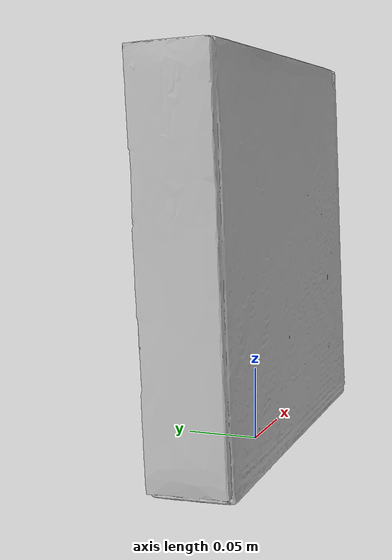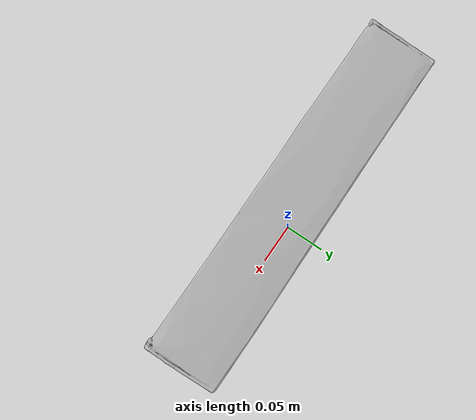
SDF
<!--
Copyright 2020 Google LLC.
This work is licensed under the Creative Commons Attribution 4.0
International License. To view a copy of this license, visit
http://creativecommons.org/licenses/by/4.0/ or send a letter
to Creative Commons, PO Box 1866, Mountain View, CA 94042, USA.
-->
<?xml version="1.0" ?>
<sdf version="1.6">
  <model name="Asus_M5A78LMUSB3_Motherboard_Micro_ATX_Socket_AM3">
    <link name="link_0">
      <visual name="visual">
        <geometry>
          <mesh>
            <uri>meshes/model.obj</uri>
          </mesh>
        </geometry>
      </visual>
      <collision name="collision_0">
        <geometry>
          <mesh>
            <uri>meshes/model.obj</uri>
          </mesh>
        </geometry>
      </collision>
    </link>
  </model>
</sdf>
